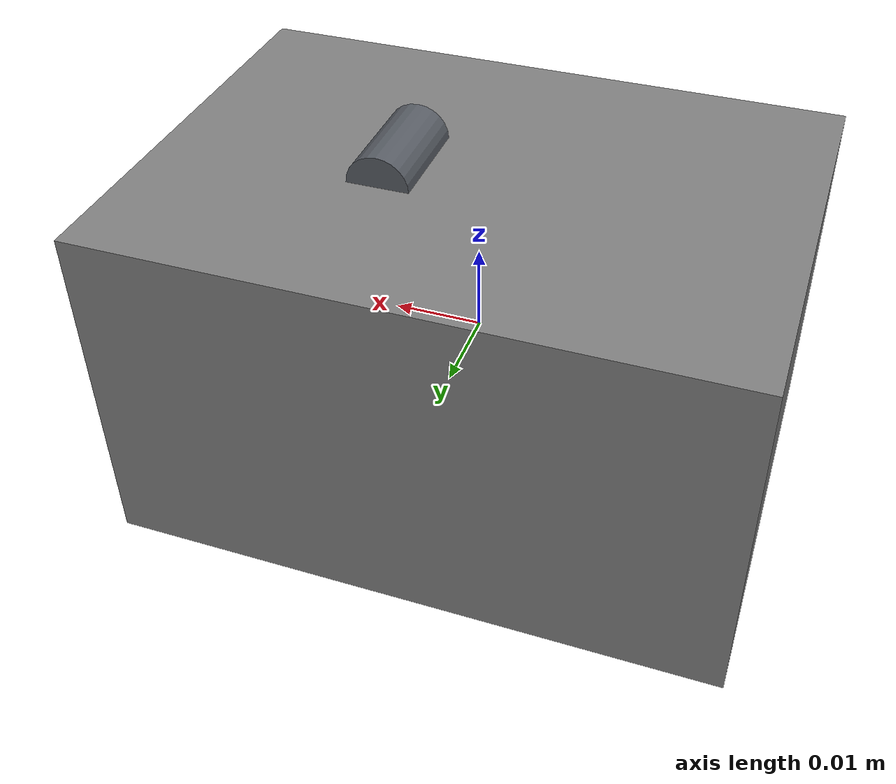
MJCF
<mujoco model="vla82_vla82_053">
  <compiler angle="radian"/>
  <asset>
    <texture name="source_texture" type="2d" file="source_texture.png"/>
    <material name="source_material" texture="source_texture" rgba="1 1 1 1"/>
  </asset>
  <default>
    <default class="visual"><geom contype="0" conaffinity="0" group="1"/></default>
    <default class="collision"><geom contype="1" conaffinity="1" group="0" density="300" friction="0.55 0.005 0.0002" solref="0.02 1" solimp="0.9 0.95 0.001"/></default>
    <default class="region"><geom contype="0" conaffinity="0" group="1" rgba="0 1 0 0" mass="0"/></default>
  </default>
  <worldbody><body><body name="object">
    <geom name="visual" class="visual" type="ellipsoid" size="0.035000 0.025000 0.020000" rgba="0.10 0.11 0.13 1"/>
    <geom name="mouse_button_seam" class="visual" type="box" pos="0.014000 0 0.018000" size="0.017500 0.0006 0.001" rgba="0.025 0.030 0.040 1"/>
    <geom name="mouse_wheel" class="visual" type="cylinder" pos="0.009100 0 0.020000" size="0.0035 0.006" quat="0.7071068 0.7071068 0 0" rgba="0.34 0.36 0.39 1"/>
    <geom name="collision" class="collision" type="box" size="0.035000 0.025000 0.020000"/>
    <geom name="reg_bbox" class="region" type="box" pos="0 0 0" size="0.035000 0.025000 0.020000"/>
  </body></body></worldbody>
  <actuator/>
</mujoco>
